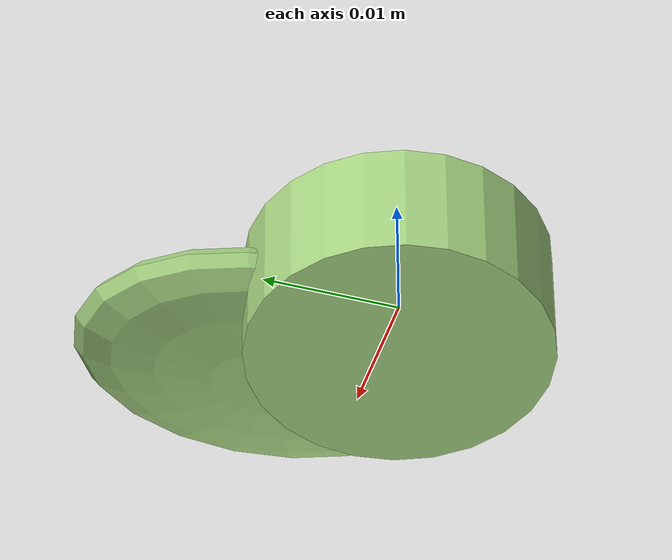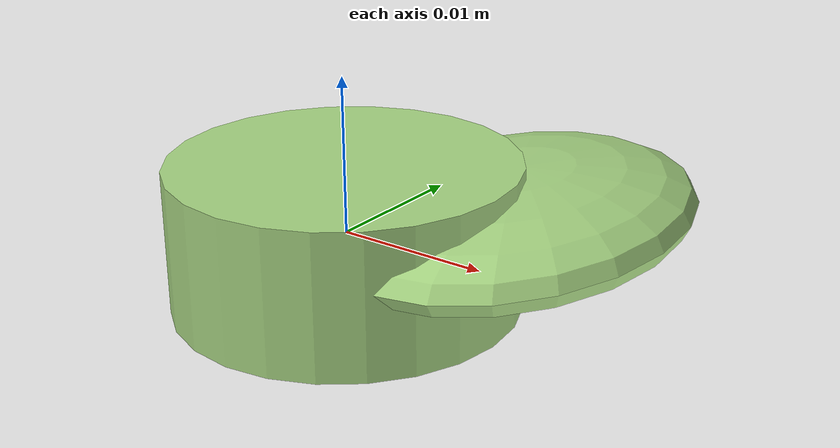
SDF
<?xml version="1.0" ?>
<!-- |    This document was autogenerated by xmacro from data/veggie_template/veggie_base.sdf.xacro  | -->
<!-- |    EDITING THIS FILE BY HAND IS NOT RECOMMENDED                                               | -->
<sdf version="1.8">
	<!-- Parameters -->
	<!-- Base -->
	<!-- Joint 0 -->
	<!-- Link 1 -->
	<!-- Joint 1 -->
	<!-- Link 2 -->
	<!-- Primitives -->
	<!-- All dimensions are half -->
	<!-- Object -->
	<model name="veggie">
		<!-- link0 -->
		<link name="link0">
			<inertial>
				<mass>0.003532794748191939</mass>
				<inertia>
					<ixx>1.3271116035344935e-07</ixx>
					<ixy>0</ixy>
					<ixz>0</ixz>
					<iyy>1.3271116035344935e-07</iyy>
					<iyz>0</iyz>
					<izz>2.153086842189994e-07</izz>
				</inertia>
			</inertial>
			<visual name="link0_visual">
				<pose>0 0 0 0 0 0</pose>
				<geometry>
					<cylinder>
						<radius>0.01104044473757707</radius>
						<length>0.009225594915183514</length>
					</cylinder>
				</geometry>
				<material>
					<ambient>0.659 0.839 0.514 1</ambient>
					<diffuse>0.659 0.839 0.514 1</diffuse>
					<specular>0 0 0 0</specular>
					<emissive>0 0 0 1</emissive>
				</material>
			</visual>
			<collision name="link0_collision">
				<pose>0 0 0 0 0 0 </pose>
				<geometry>
					<cylinder>
						<radius>0.01104044473757707</radius>
						<length>0.009225594915183514</length>
					</cylinder>
				</geometry>
			</collision>
		</link>
		<!-- link1 -->
		<joint name="joint0" type="fixed">
			<pose relative_to="link0">0.008070865573814747 0.007058121736021355 0.0007639851909966838 0.0 0.0 0.0</pose>
			<parent>link0</parent>
			<child>link1</child>
		</joint>
		<link name="link1">
			<pose relative_to="joint0">0 0 0 0 0 0</pose>
			<inertial>
				<mass>0.001968202805048879</mass>
				<inertia>
					<ixx>8.68189597050968e-08</ixx>
					<ixy>0</ixy>
					<ixz>0</ixz>
					<iyy>4.4629942013200914e-08</iyy>
					<iyz>0</iyz>
					<izz>1.2344406399861438e-07</izz>
				</inertia>
			</inertial>
			<visual name="link1_visual">
				<pose>0 0 0 0 0 0</pose>
				<geometry>
					<ellipsoid>
						<radii>0.010159217357484252 0.01450469570804305 0.003188683005279311</radii>
					</ellipsoid>
				</geometry>
				<material>
					<ambient>0.659 0.839 0.514 1</ambient>
					<diffuse>0.659 0.839 0.514 1</diffuse>
					<specular>0 0 0 0</specular>
					<emissive>0 0 0 1</emissive>
				</material>
			</visual>
			<collision name="link1_collision">
				<pose>0 0 0 0 0 0 </pose>
				<geometry>
					<ellipsoid>
						<radii>0.010159217357484252 0.01450469570804305 0.003188683005279311</radii>
					</ellipsoid>
				</geometry>
			</collision>
		</link>
		<!-- link2 -->
	</model>
</sdf>
